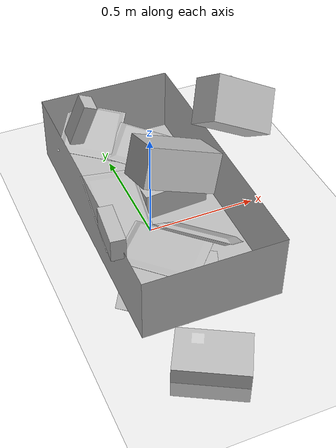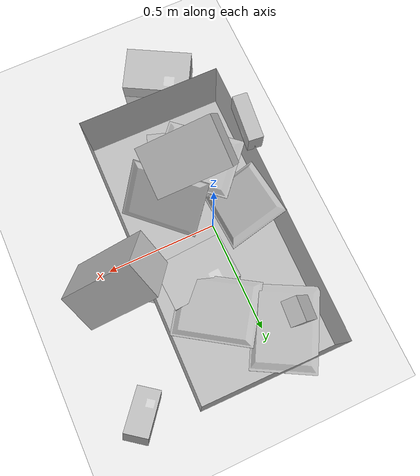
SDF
<sdf version="1.7">
 <world name="default">
  <model name="ground_plane">
   <static>1</static>
   <link name="link">
    <collision name="collision">
     <geometry><plane><normal>0 0 1</normal><size>100 100</size></plane></geometry>
     <surface><friction><ode><mu>100</mu><mu2>50</mu2></ode></friction></surface>
    </collision>
    <visual name="visual">
     <cast_shadows>0</cast_shadows>
     <geometry><plane><normal>0 0 1</normal><size>100 100</size></plane></geometry>
     <material>
      <script><uri>file://media/materials/scripts/gazebo.material</uri><name>Gazebo/Grey</name></script>
     </material>
    </visual>
   </link>
  </model>
  <model name="trolley">
   <static>1</static>
   <link name="link">
    <inertial>
     <mass>10</mass>
     <inertia><ixy>0</ixy><ixz>0</ixz><iyz>0</iyz><ixx>0.05288</ixx><iyy>0.05288</iyy><izz>0.09132</izz></inertia>
    </inertial>
    <collision name="collision">
     <geometry><mesh><uri>model://trolley/meshes/trolley.dae</uri></mesh></geometry>
    </collision>
    <visual name="visual">
     <geometry><mesh><uri>model://trolley/meshes/trolley.dae</uri><scale>1 1 1</scale></mesh></geometry>
     <meta><layer>1</layer></meta>
    </visual>
   </link>
   <pose>0.051238 0.131331 0.154361 0.000575 6e-06 3.13104</pose>
  </model>
  <model name="flyer_box_1">
   <link name="link">
    <inertial>
     <mass>1</mass>
     <inertia><ixy>0</ixy><ixz>0</ixz><iyz>0</iyz><ixx>0.05288</ixx><iyy>0.05288</iyy><izz>0.09132</izz></inertia>
    </inertial>
    <collision name="collision">
     <geometry><mesh><uri>model://flyer_boxes/meshes/flyer.dae</uri></mesh></geometry>
    </collision>
    <visual name="visual">
     <geometry><mesh><uri>model://flyer_boxes/meshes/flyer.dae</uri><scale>1 1 1</scale></mesh></geometry>
     <meta><layer>1</layer></meta>
    </visual>
   </link>
   <pose>-0.058636 0.542791 0.191496 0.156767 -0.054427 1.06147</pose>
  </model>
  <model name="medium_box_1">
   <link name="link">
    <inertial>
     <mass>1</mass>
     <inertia><ixy>0</ixy><ixz>0</ixz><iyz>0</iyz><ixx>0.05288</ixx><iyy>0.05288</iyy><izz>0.09132</izz></inertia>
    </inertial>
    <visual name="visual">
     <geometry><mesh><uri>model://medium_boxes/meshes/medium_box.dae</uri><scale>1 1 1</scale></mesh></geometry>
     <meta><layer>1</layer></meta>
     <material><shader type="pixel"><normal_map>__default__</normal_map></shader></material>
    </visual>
    <collision name="collision">
     <geometry><mesh><uri>model://medium_boxes/meshes/medium_box.dae</uri><scale>1 1 1</scale></mesh></geometry>
     <surface>
      <friction>
       <ode><mu>1</mu><mu2>1</mu2><fdir1>0 0 0</fdir1><slip1>0</slip1><slip2>0</slip2></ode>
       <torsional>
        <coefficient>1</coefficient>
        <patch_radius>0</patch_radius>
        <surface_radius>0</surface_radius>
        <use_patch_radius>1</use_patch_radius>
        <ode><slip>0</slip></ode>
       </torsional>
      </friction>
      <bounce><restitution_coefficient>0</restitution_coefficient><threshold>0</threshold></bounce>
      <contact>
       <collide_without_contact>0</collide_without_contact>
       <collide_without_contact_bitmask>1</collide_without_contact_bitmask>
       <collide_bitmask>1</collide_bitmask>
       <ode>
        <soft_cfm>0</soft_cfm>
        <soft_erp>0.2</soft_erp>
        <kp>100000</kp>
        <kd>1</kd>
        <max_vel>0.001</max_vel>
        <min_depth>0</min_depth>
       </ode>
       <bullet>
        <split_impulse>1</split_impulse>
        <split_impulse_penetration_threshold>-0.01</split_impulse_penetration_threshold>
        <soft_cfm>0</soft_cfm>
        <soft_erp>0.2</soft_erp>
        <kp>100000</kp>
        <kd>1</kd>
       </bullet>
      </contact>
     </surface>
    </collision>
   </link>
   <static>0</static>
   <pose>-0.020673 0.618853 0.111982 -0.000992 -0.000183 0.057388</pose>
  </model>
  <model name="medium_box_1_clone">
   <link name="link">
    <inertial>
     <mass>1</mass>
     <inertia><ixy>0</ixy><ixz>0</ixz><iyz>0</iyz><ixx>0.05288</ixx><iyy>0.05288</iyy><izz>0.09132</izz></inertia>
    </inertial>
    <visual name="visual">
     <geometry><mesh><uri>model://medium_boxes/meshes/medium_box.dae</uri><scale>1 1 1</scale></mesh></geometry>
     <meta><layer>1</layer></meta>
     <material><shader type="pixel"><normal_map>__default__</normal_map></shader></material>
    </visual>
    <collision name="collision">
     <geometry><mesh><uri>model://medium_boxes/meshes/medium_box.dae</uri><scale>1 1 1</scale></mesh></geometry>
     <surface>
      <friction>
       <ode><mu>1</mu><mu2>1</mu2><fdir1>0 0 0</fdir1><slip1>0</slip1><slip2>0</slip2></ode>
       <torsional>
        <coefficient>1</coefficient>
        <patch_radius>0</patch_radius>
        <surface_radius>0</surface_radius>
        <use_patch_radius>1</use_patch_radius>
        <ode><slip>0</slip></ode>
       </torsional>
      </friction>
      <bounce><restitution_coefficient>0</restitution_coefficient><threshold>0</threshold></bounce>
      <contact>
       <collide_without_contact>0</collide_without_contact>
       <collide_without_contact_bitmask>1</collide_without_contact_bitmask>
       <collide_bitmask>1</collide_bitmask>
       <ode>
        <soft_cfm>0</soft_cfm>
        <soft_erp>0.2</soft_erp>
        <kp>100000</kp>
        <kd>1</kd>
        <max_vel>0.001</max_vel>
        <min_depth>0</min_depth>
       </ode>
       <bullet>
        <split_impulse>1</split_impulse>
        <split_impulse_penetration_threshold>-0.01</split_impulse_penetration_threshold>
        <soft_cfm>0</soft_cfm>
        <soft_erp>0.2</soft_erp>
        <kp>100000</kp>
        <kd>1</kd>
       </bullet>
      </contact>
     </surface>
    </collision>
   </link>
   <static>0</static>
   <pose>0.016312 0.135673 0.145878 0.682526 -0.000377 -0.665957</pose>
  </model>
  <model name="medium_box_1_clone_0">
   <link name="link">
    <inertial>
     <mass>1</mass>
     <inertia><ixy>0</ixy><ixz>0</ixz><iyz>0</iyz><ixx>0.05288</ixx><iyy>0.05288</iyy><izz>0.09132</izz></inertia>
    </inertial>
    <visual name="visual">
     <geometry><mesh><uri>model://medium_boxes/meshes/medium_box.dae</uri><scale>1 1 1</scale></mesh></geometry>
     <meta><layer>1</layer></meta>
     <material><shader type="pixel"><normal_map>__default__</normal_map></shader></material>
    </visual>
    <collision name="collision">
     <geometry><mesh><uri>model://medium_boxes/meshes/medium_box.dae</uri><scale>1 1 1</scale></mesh></geometry>
     <surface>
      <friction>
       <ode><mu>1</mu><mu2>1</mu2><fdir1>0 0 0</fdir1><slip1>0</slip1><slip2>0</slip2></ode>
       <torsional>
        <coefficient>1</coefficient>
        <patch_radius>0</patch_radius>
        <surface_radius>0</surface_radius>
        <use_patch_radius>1</use_patch_radius>
        <ode><slip>0</slip></ode>
       </torsional>
      </friction>
      <bounce><restitution_coefficient>0</restitution_coefficient><threshold>0</threshold></bounce>
      <contact>
       <collide_without_contact>0</collide_without_contact>
       <collide_without_contact_bitmask>1</collide_without_contact_bitmask>
       <collide_bitmask>1</collide_bitmask>
       <ode>
        <soft_cfm>0</soft_cfm>
        <soft_erp>0.2</soft_erp>
        <kp>100000</kp>
        <kd>1</kd>
        <max_vel>0.001</max_vel>
        <min_depth>0</min_depth>
       </ode>
       <bullet>
        <split_impulse>1</split_impulse>
        <split_impulse_penetration_threshold>-0.01</split_impulse_penetration_threshold>
        <soft_cfm>0</soft_cfm>
        <soft_erp>0.2</soft_erp>
        <kp>100000</kp>
        <kd>1</kd>
       </bullet>
      </contact>
     </surface>
    </collision>
   </link>
   <static>0</static>
   <pose>0.015818 -0.305238 0.067632 0.018448 2e-06 -0.505309</pose>
  </model>
  <model name="medium_box_1_clone_1">
   <link name="link">
    <inertial>
     <mass>1</mass>
     <inertia><ixy>0</ixy><ixz>0</ixz><iyz>0</iyz><ixx>0.05288</ixx><iyy>0.05288</iyy><izz>0.09132</izz></inertia>
    </inertial>
    <visual name="visual">
     <geometry><mesh><uri>model://medium_boxes/meshes/medium_box.dae</uri><scale>1 1 1</scale></mesh></geometry>
     <meta><layer>1</layer></meta>
     <material><shader type="pixel"><normal_map>__default__</normal_map></shader></material>
    </visual>
    <collision name="collision">
     <geometry><mesh><uri>model://medium_boxes/meshes/medium_box.dae</uri><scale>1 1 1</scale></mesh></geometry>
     <surface>
      <friction>
       <ode><mu>1</mu><mu2>1</mu2><fdir1>0 0 0</fdir1><slip1>0</slip1><slip2>0</slip2></ode>
       <torsional>
        <coefficient>1</coefficient>
        <patch_radius>0</patch_radius>
        <surface_radius>0</surface_radius>
        <use_patch_radius>1</use_patch_radius>
        <ode><slip>0</slip></ode>
       </torsional>
      </friction>
      <bounce><restitution_coefficient>0</restitution_coefficient><threshold>0</threshold></bounce>
      <contact>
       <collide_without_contact>0</collide_without_contact>
       <collide_without_contact_bitmask>1</collide_without_contact_bitmask>
       <collide_bitmask>1</collide_bitmask>
       <ode>
        <soft_cfm>0</soft_cfm>
        <soft_erp>0.2</soft_erp>
        <kp>100000</kp>
        <kd>1</kd>
        <max_vel>0.001</max_vel>
        <min_depth>0</min_depth>
       </ode>
       <bullet>
        <split_impulse>1</split_impulse>
        <split_impulse_penetration_threshold>-0.01</split_impulse_penetration_threshold>
        <soft_cfm>0</soft_cfm>
        <soft_erp>0.2</soft_erp>
        <kp>100000</kp>
        <kd>1</kd>
       </bullet>
      </contact>
     </surface>
    </collision>
   </link>
   <static>0</static>
   <pose>0.125169 -0.078401 0.179834 -2.25497 0.48676 -0.047731</pose>
  </model>
  <model name="medium_box_1_clone_2">
   <link name="link">
    <inertial>
     <mass>1</mass>
     <inertia><ixy>0</ixy><ixz>0</ixz><iyz>0</iyz><ixx>0.05288</ixx><iyy>0.05288</iyy><izz>0.09132</izz></inertia>
    </inertial>
    <visual name="visual">
     <geometry><mesh><uri>model://medium_boxes/meshes/medium_box.dae</uri><scale>1 1 1</scale></mesh></geometry>
     <meta><layer>1</layer></meta>
     <material><shader type="pixel"><normal_map>__default__</normal_map></shader></material>
    </visual>
    <collision name="collision">
     <geometry><mesh><uri>model://medium_boxes/meshes/medium_box.dae</uri><scale>1 1 1</scale></mesh></geometry>
     <surface>
      <friction>
       <ode><mu>1</mu><mu2>1</mu2><fdir1>0 0 0</fdir1><slip1>0</slip1><slip2>0</slip2></ode>
       <torsional>
        <coefficient>1</coefficient>
        <patch_radius>0</patch_radius>
        <surface_radius>0</surface_radius>
        <use_patch_radius>1</use_patch_radius>
        <ode><slip>0</slip></ode>
       </torsional>
      </friction>
      <bounce><restitution_coefficient>0</restitution_coefficient><threshold>0</threshold></bounce>
      <contact>
       <collide_without_contact>0</collide_without_contact>
       <collide_without_contact_bitmask>1</collide_without_contact_bitmask>
       <collide_bitmask>1</collide_bitmask>
       <ode>
        <soft_cfm>0</soft_cfm>
        <soft_erp>0.2</soft_erp>
        <kp>100000</kp>
        <kd>1</kd>
        <max_vel>0.001</max_vel>
        <min_depth>0</min_depth>
       </ode>
       <bullet>
        <split_impulse>1</split_impulse>
        <split_impulse_penetration_threshold>-0.01</split_impulse_penetration_threshold>
        <soft_cfm>0</soft_cfm>
        <soft_erp>0.2</soft_erp>
        <kp>100000</kp>
        <kd>1</kd>
       </bullet>
      </contact>
     </surface>
    </collision>
   </link>
   <static>0</static>
   <pose>0.143907 0.220937 0.250117 -2.78755 -0.326001 3.03922</pose>
  </model>
  <model name="small_box_1">
   <link name="link">
    <inertial>
     <mass>0.72</mass>
     <inertia><ixy>0</ixy><ixz>0</ixz><iyz>0</iyz><ixx>0.05288</ixx><iyy>0.05288</iyy><izz>0.09132</izz></inertia>
    </inertial>
    <visual name="visual">
     <geometry><mesh><uri>model://small_boxes/meshes/small_box.dae</uri><scale>1 1 1</scale></mesh></geometry>
     <meta><layer>1</layer></meta>
     <material><shader type="pixel"><normal_map>__default__</normal_map></shader></material>
    </visual>
    <collision name="collision">
     <geometry><mesh><uri>model://small_boxes/meshes/small_box.dae</uri><scale>1 1 1</scale></mesh></geometry>
     <surface>
      <friction>
       <ode><mu>1000</mu><mu2>1000</mu2><fdir1>0 0 0</fdir1><slip1>0</slip1><slip2>0</slip2></ode>
       <torsional>
        <coefficient>1</coefficient>
        <patch_radius>0</patch_radius>
        <surface_radius>0</surface_radius>
        <use_patch_radius>1</use_patch_radius>
        <ode><slip>0</slip></ode>
       </torsional>
      </friction>
      <bounce><restitution_coefficient>0</restitution_coefficient><threshold>0</threshold></bounce>
      <contact>
       <collide_without_contact>0</collide_without_contact>
       <collide_without_contact_bitmask>1</collide_without_contact_bitmask>
       <collide_bitmask>1</collide_bitmask>
       <ode>
        <soft_cfm>0</soft_cfm>
        <soft_erp>0.2</soft_erp>
        <kp>1e+06</kp>
        <kd>1</kd>
        <max_vel>0.01</max_vel>
        <min_depth>0</min_depth>
       </ode>
       <bullet>
        <split_impulse>1</split_impulse>
        <split_impulse_penetration_threshold>-0.01</split_impulse_penetration_threshold>
        <soft_cfm>0</soft_cfm>
        <soft_erp>0.2</soft_erp>
        <kp>1e+06</kp>
        <kd>1</kd>
       </bullet>
      </contact>
     </surface>
    </collision>
   </link>
   <static>0</static>
   <pose>0.240835 0.618408 0.081818 -0.000386 -0.497716 0.926336</pose>
  </model>
  <model name="small_box_1_clone">
   <link name="link">
    <inertial>
     <mass>0.72</mass>
     <inertia><ixy>0</ixy><ixz>0</ixz><iyz>0</iyz><ixx>0.05288</ixx><iyy>0.05288</iyy><izz>0.09132</izz></inertia>
    </inertial>
    <visual name="visual">
     <geometry><mesh><uri>model://small_boxes/meshes/small_box.dae</uri><scale>1 1 1</scale></mesh></geometry>
     <meta><layer>1</layer></meta>
     <material><shader type="pixel"><normal_map>__default__</normal_map></shader></material>
    </visual>
    <collision name="collision">
     <geometry><mesh><uri>model://small_boxes/meshes/small_box.dae</uri><scale>1 1 1</scale></mesh></geometry>
     <surface>
      <friction>
       <ode><mu>1000</mu><mu2>1000</mu2><fdir1>0 0 0</fdir1><slip1>0</slip1><slip2>0</slip2></ode>
       <torsional>
        <coefficient>1</coefficient>
        <patch_radius>0</patch_radius>
        <surface_radius>0</surface_radius>
        <use_patch_radius>1</use_patch_radius>
        <ode><slip>0</slip></ode>
       </torsional>
      </friction>
      <bounce><restitution_coefficient>0</restitution_coefficient><threshold>0</threshold></bounce>
      <contact>
       <collide_without_contact>0</collide_without_contact>
       <collide_without_contact_bitmask>1</collide_without_contact_bitmask>
       <collide_bitmask>1</collide_bitmask>
       <ode>
        <soft_cfm>0</soft_cfm>
        <soft_erp>0.2</soft_erp>
        <kp>1e+06</kp>
        <kd>1</kd>
        <max_vel>0.01</max_vel>
        <min_depth>0</min_depth>
       </ode>
       <bullet>
        <split_impulse>1</split_impulse>
        <split_impulse_penetration_threshold>-0.01</split_impulse_penetration_threshold>
        <soft_cfm>0</soft_cfm>
        <soft_erp>0.2</soft_erp>
        <kp>1e+06</kp>
        <kd>1</kd>
       </bullet>
      </contact>
     </surface>
    </collision>
   </link>
   <static>0</static>
   <pose>-0.175396 0.228553 0.089355 3.1402 -1.17544 -0.076289</pose>
  </model>
  <model name="small_box_1_clone_0">
   <link name="link">
    <inertial>
     <mass>0.72</mass>
     <inertia><ixy>0</ixy><ixz>0</ixz><iyz>0</iyz><ixx>0.05288</ixx><iyy>0.05288</iyy><izz>0.09132</izz></inertia>
    </inertial>
    <visual name="visual">
     <geometry><mesh><uri>model://small_boxes/meshes/small_box.dae</uri><scale>1 1 1</scale></mesh></geometry>
     <meta><layer>1</layer></meta>
     <material><shader type="pixel"><normal_map>__default__</normal_map></shader></material>
    </visual>
    <collision name="collision">
     <geometry><mesh><uri>model://small_boxes/meshes/small_box.dae</uri><scale>1 1 1</scale></mesh></geometry>
     <surface>
      <friction>
       <ode><mu>1000</mu><mu2>1000</mu2><fdir1>0 0 0</fdir1><slip1>0</slip1><slip2>0</slip2></ode>
       <torsional>
        <coefficient>1</coefficient>
        <patch_radius>0</patch_radius>
        <surface_radius>0</surface_radius>
        <use_patch_radius>1</use_patch_radius>
        <ode><slip>0</slip></ode>
       </torsional>
      </friction>
      <bounce><restitution_coefficient>0</restitution_coefficient><threshold>0</threshold></bounce>
      <contact>
       <collide_without_contact>0</collide_without_contact>
       <collide_without_contact_bitmask>1</collide_without_contact_bitmask>
       <collide_bitmask>1</collide_bitmask>
       <ode>
        <soft_cfm>0</soft_cfm>
        <soft_erp>0.2</soft_erp>
        <kp>1e+06</kp>
        <kd>1</kd>
        <max_vel>0.01</max_vel>
        <min_depth>0</min_depth>
       </ode>
       <bullet>
        <split_impulse>1</split_impulse>
        <split_impulse_penetration_threshold>-0.01</split_impulse_penetration_threshold>
        <soft_cfm>0</soft_cfm>
        <soft_erp>0.2</soft_erp>
        <kp>1e+06</kp>
        <kd>1</kd>
       </bullet>
      </contact>
     </surface>
    </collision>
   </link>
   <static>0</static>
   <pose>-0.106467 -0.092826 0.027516 3.04282 -0.000557 -1.93441</pose>
  </model>
  <model name="small_box_1_clone_1">
   <link name="link">
    <inertial>
     <mass>0.72</mass>
     <inertia><ixy>0</ixy><ixz>0</ixz><iyz>0</iyz><ixx>0.05288</ixx><iyy>0.05288</iyy><izz>0.09132</izz></inertia>
    </inertial>
    <visual name="visual">
     <geometry><mesh><uri>model://small_boxes/meshes/small_box.dae</uri><scale>1 1 1</scale></mesh></geometry>
     <meta><layer>1</layer></meta>
     <material><shader type="pixel"><normal_map>__default__</normal_map></shader></material>
    </visual>
    <collision name="collision">
     <geometry><mesh><uri>model://small_boxes/meshes/small_box.dae</uri><scale>1 1 1</scale></mesh></geometry>
     <surface>
      <friction>
       <ode><mu>1000</mu><mu2>1000</mu2><fdir1>0 0 0</fdir1><slip1>0</slip1><slip2>0</slip2></ode>
       <torsional>
        <coefficient>1</coefficient>
        <patch_radius>0</patch_radius>
        <surface_radius>0</surface_radius>
        <use_patch_radius>1</use_patch_radius>
        <ode><slip>0</slip></ode>
       </torsional>
      </friction>
      <bounce><restitution_coefficient>0</restitution_coefficient><threshold>0</threshold></bounce>
      <contact>
       <collide_without_contact>0</collide_without_contact>
       <collide_without_contact_bitmask>1</collide_without_contact_bitmask>
       <collide_bitmask>1</collide_bitmask>
       <ode>
        <soft_cfm>0</soft_cfm>
        <soft_erp>0.2</soft_erp>
        <kp>1e+06</kp>
        <kd>1</kd>
        <max_vel>0.01</max_vel>
        <min_depth>0</min_depth>
       </ode>
       <bullet>
        <split_impulse>1</split_impulse>
        <split_impulse_penetration_threshold>-0.01</split_impulse_penetration_threshold>
        <soft_cfm>0</soft_cfm>
        <soft_erp>0.2</soft_erp>
        <kp>1e+06</kp>
        <kd>1</kd>
       </bullet>
      </contact>
     </surface>
    </collision>
   </link>
   <static>0</static>
   <pose>0.141906 0.230323 0.060554 1.60557 -0.000329 -0.647732</pose>
  </model>
  <model name="small_box_1_clone_2">
   <link name="link">
    <inertial>
     <mass>0.72</mass>
     <inertia><ixy>0</ixy><ixz>0</ixz><iyz>0</iyz><ixx>0.05288</ixx><iyy>0.05288</iyy><izz>0.09132</izz></inertia>
    </inertial>
    <visual name="visual">
     <geometry><mesh><uri>model://small_boxes/meshes/small_box.dae</uri><scale>1 1 1</scale></mesh></geometry>
     <meta><layer>1</layer></meta>
     <material><shader type="pixel"><normal_map>__default__</normal_map></shader></material>
    </visual>
    <collision name="collision">
     <geometry><mesh><uri>model://small_boxes/meshes/small_box.dae</uri><scale>1 1 1</scale></mesh></geometry>
     <surface>
      <friction>
       <ode><mu>1000</mu><mu2>1000</mu2><fdir1>0 0 0</fdir1><slip1>0</slip1><slip2>0</slip2></ode>
       <torsional>
        <coefficient>1</coefficient>
        <patch_radius>0</patch_radius>
        <surface_radius>0</surface_radius>
        <use_patch_radius>1</use_patch_radius>
        <ode><slip>0</slip></ode>
       </torsional>
      </friction>
      <bounce><restitution_coefficient>0</restitution_coefficient><threshold>0</threshold></bounce>
      <contact>
       <collide_without_contact>0</collide_without_contact>
       <collide_without_contact_bitmask>1</collide_without_contact_bitmask>
       <collide_bitmask>1</collide_bitmask>
       <ode>
        <soft_cfm>0</soft_cfm>
        <soft_erp>0.2</soft_erp>
        <kp>1e+06</kp>
        <kd>1</kd>
        <max_vel>0.01</max_vel>
        <min_depth>0</min_depth>
       </ode>
       <bullet>
        <split_impulse>1</split_impulse>
        <split_impulse_penetration_threshold>-0.01</split_impulse_penetration_threshold>
        <soft_cfm>0</soft_cfm>
        <soft_erp>0.2</soft_erp>
        <kp>1e+06</kp>
        <kd>1</kd>
       </bullet>
      </contact>
     </surface>
    </collision>
   </link>
   <static>0</static>
   <pose>-0.198769 -0.076743 0.046246 -1.57077 -0.000567 -1.67604</pose>
  </model>
  <model name="flyer_box_1_clone">
   <link name="link">
    <inertial>
     <mass>1</mass>
     <inertia><ixy>0</ixy><ixz>0</ixz><iyz>0</iyz><ixx>0.05288</ixx><iyy>0.05288</iyy><izz>0.09132</izz></inertia>
    </inertial>
    <collision name="collision">
     <geometry><mesh><uri>model://flyer_boxes/meshes/flyer.dae</uri></mesh></geometry>
    </collision>
    <visual name="visual">
     <geometry><mesh><uri>model://flyer_boxes/meshes/flyer.dae</uri><scale>1 1 1</scale></mesh></geometry>
     <meta><layer>1</layer></meta>
    </visual>
   </link>
   <pose>-0.132973 0.002891 0.178195 0.33624 -0.532502 1.56068</pose>
  </model>
  <model name="flyer_box_1_clone_0">
   <link name="link">
    <inertial>
     <mass>1</mass>
     <inertia><ixy>0</ixy><ixz>0</ixz><iyz>0</iyz><ixx>0.05288</ixx><iyy>0.05288</iyy><izz>0.09132</izz></inertia>
    </inertial>
    <collision name="collision">
     <geometry><mesh><uri>model://flyer_boxes/meshes/flyer.dae</uri></mesh></geometry>
    </collision>
    <visual name="visual">
     <geometry><mesh><uri>model://flyer_boxes/meshes/flyer.dae</uri><scale>1 1 1</scale></mesh></geometry>
     <meta><layer>1</layer></meta>
    </visual>
   </link>
   <pose>-0.049473 -0.264317 0.144376 0.052194 -0.039438 2.40805</pose>
  </model>
  <model name="flyer_box_1_clone_1">
   <link name="link">
    <inertial>
     <mass>1</mass>
     <inertia><ixy>0</ixy><ixz>0</ixz><iyz>0</iyz><ixx>0.05288</ixx><iyy>0.05288</iyy><izz>0.09132</izz></inertia>
    </inertial>
    <collision name="collision">
     <geometry><mesh><uri>model://flyer_boxes/meshes/flyer.dae</uri></mesh></geometry>
    </collision>
    <visual name="visual">
     <geometry><mesh><uri>model://flyer_boxes/meshes/flyer.dae</uri><scale>1 1 1</scale></mesh></geometry>
     <meta><layer>1</layer></meta>
    </visual>
   </link>
   <pose>0.153531 -0.173205 0.087408 0.698681 0.000593 2.38697</pose>
  </model>
  <model name="flyer_box_1_clone_2">
   <link name="link">
    <inertial>
     <mass>1</mass>
     <inertia><ixy>0</ixy><ixz>0</ixz><iyz>0</iyz><ixx>0.05288</ixx><iyy>0.05288</iyy><izz>0.09132</izz></inertia>
    </inertial>
    <collision name="collision">
     <geometry><mesh><uri>model://flyer_boxes/meshes/flyer.dae</uri></mesh></geometry>
    </collision>
    <visual name="visual">
     <geometry><mesh><uri>model://flyer_boxes/meshes/flyer.dae</uri><scale>1 1 1</scale></mesh></geometry>
     <meta><layer>1</layer></meta>
    </visual>
   </link>
   <pose>0.151598 0.350512 0.146966 0.036251 0.208967 -0.593641</pose>
  </model>
 </world>
</sdf>
